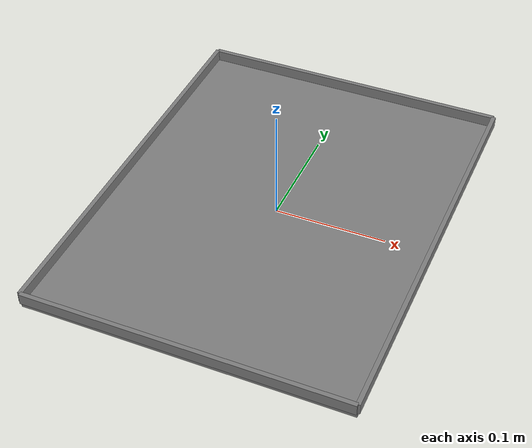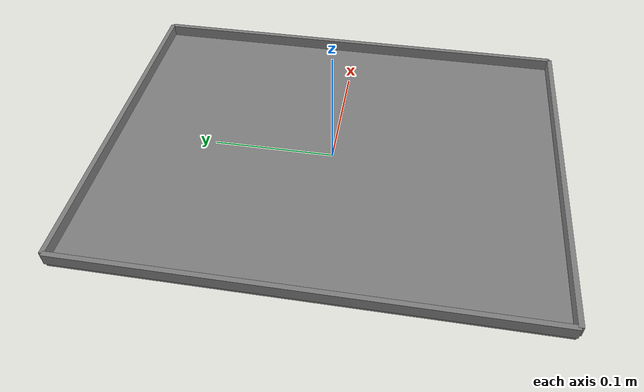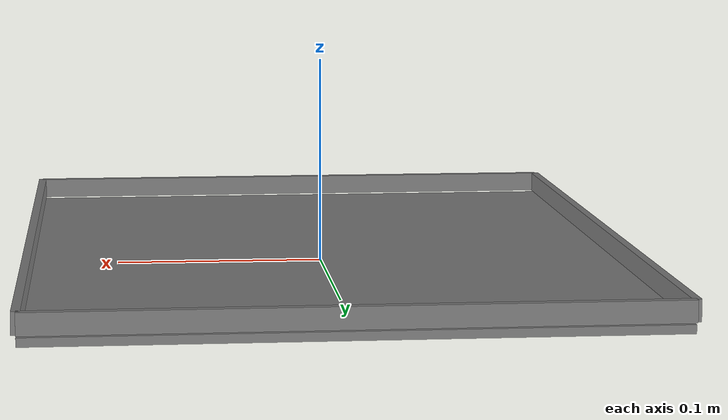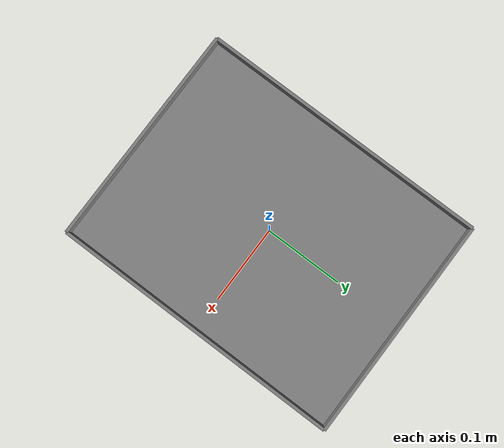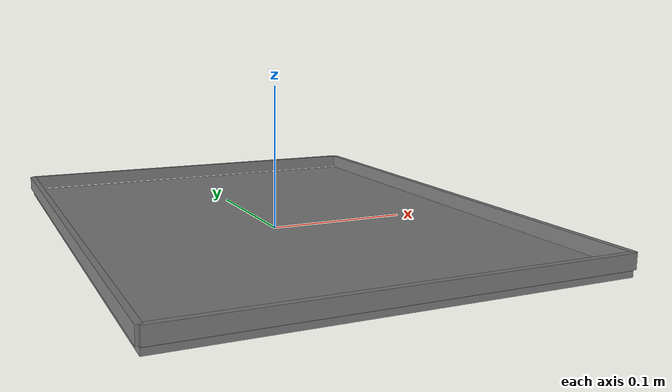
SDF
<?xml version="1.0" ?>
<sdf version="1.5">
  <model name="wrc_tray">
    <static>true</static>
    <link name="link">
      <inertial>
        <mass>1.0</mass>
      </inertial>
      <collision name="bottom">
        <pose>0 0 0.002 0 0 0</pose>
        <geometry>
          <box>
            <size>0.36 0.38 0.004</size>
          </box>
        </geometry>
      </collision>
      <visual name="bottom_v">
        <pose>0 0 0.002 0 0 0</pose>
        <geometry>
          <box>
            <size>0.285 0.37 0.004</size>
          </box>
        </geometry>
        <material>
          <name>gray</name>
          <ambient>0.5 0.5 0.5 1.0</ambient>
          <diffuse>0.5 0.5 0.5 1.0</diffuse>
          <specular>0.1 0.1 0.1 1.0</specular>
          <shininess>5.0</shininess>
        </material>
      </visual>
      <collision name="front">
        <pose>0 0.185 0.01 0 0 0</pose>
        <geometry>
          <box>
            <size>0.285 0.004 0.01</size>
          </box>
        </geometry>
      </collision>
      <visual name="front_v">
        <pose>0 0.185 0.01 0 0 0</pose>
        <geometry>
          <box>
            <size>0.285 0.004 0.01</size>
          </box>
        </geometry>
        <material>
          <name>gray</name>
          <ambient>0.5 0.5 0.5 1.0</ambient>
          <diffuse>0.5 0.5 0.5 1.0</diffuse>
          <specular>0.1 0.1 0.1 1.0</specular>
          <shininess>5.0</shininess>
        </material>
      </visual>
      <collision name="back">
        <pose>0 -0.185 0.01 0 0 0</pose>
        <geometry>
          <box>
            <size>0.285 0.004 0.01</size>
          </box>
        </geometry>
      </collision>
      <visual name="back_v">
        <pose>0 -0.185 0.01 0 0 0</pose>
        <geometry>
          <box>
            <size>0.285 0.004 0.01</size>
          </box>
        </geometry>
        <material>
          <name>gray</name>
          <ambient>0.5 0.5 0.5 1.0</ambient>
          <diffuse>0.5 0.5 0.5 1.0</diffuse>
          <specular>0.1 0.1 0.1 1.0</specular>
          <shininess>5.0</shininess>
        </material>
      </visual>
      <collision name="left">
        <pose>0.1425 0 0.01 0 0 0</pose>
        <geometry>
          <box>
            <size>0.004 0.37 0.01</size>
          </box>
        </geometry>
      </collision>
      <visual name="left_v">
        <pose>0.1425 0 0.01 0 0 0</pose>
        <geometry>
          <box>
            <size>0.004 0.37 0.01</size>
          </box>
        </geometry>
        <material>
          <name>gray</name>
          <ambient>0.5 0.5 0.5 1.0</ambient>
          <diffuse>0.5 0.5 0.5 1.0</diffuse>
          <specular>0.1 0.1 0.1 1.0</specular>
          <shininess>5.0</shininess>
        </material>
      </visual>
      <collision name="right">
        <pose>-0.1425 0 0.01 0 0 0</pose>
        <geometry>
          <box>
            <size>0.004 0.37 0.01</size>
          </box>
        </geometry>
      </collision>
      <visual name="right_v">
        <pose>-0.1425 0 0.01 0 0 0</pose>
        <geometry>
          <box>
            <size>0.004 0.37 0.01</size>
          </box>
        </geometry>
        <material>
          <name>gray</name>
          <ambient>0.5 0.5 0.5 1.0</ambient>
          <diffuse>0.5 0.5 0.5 1.0</diffuse>
          <specular>0.1 0.1 0.1 1.0</specular>
          <shininess>5.0</shininess>
        </material>
      </visual>
    </link>
  </model>
</sdf>
